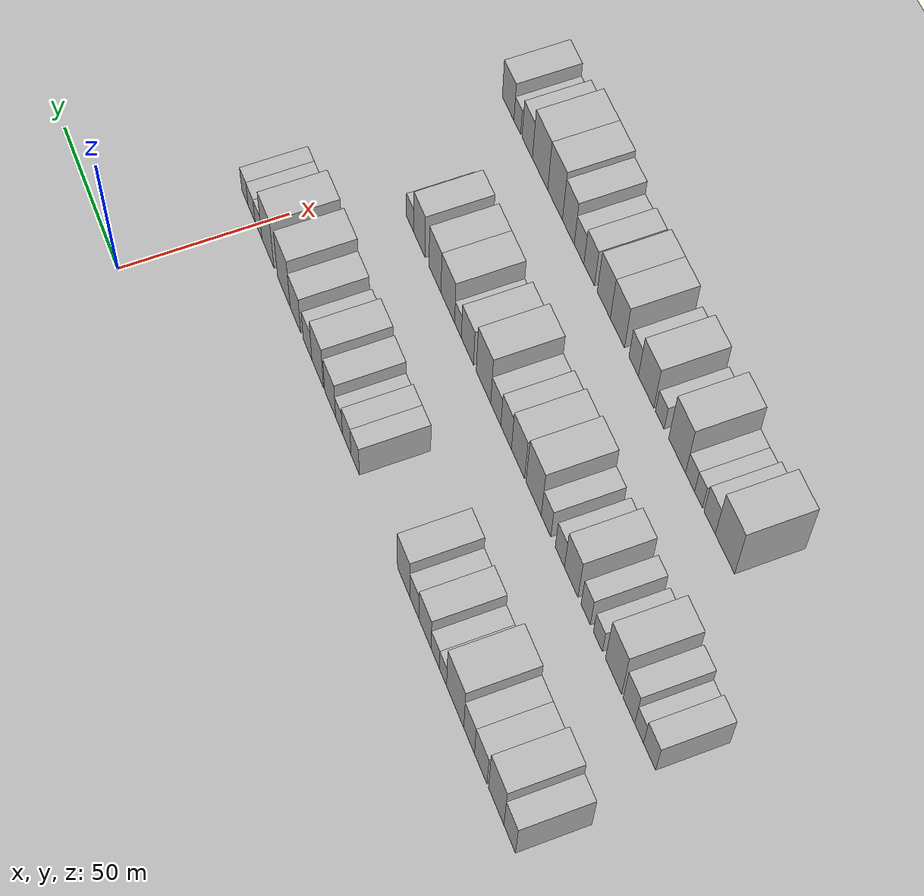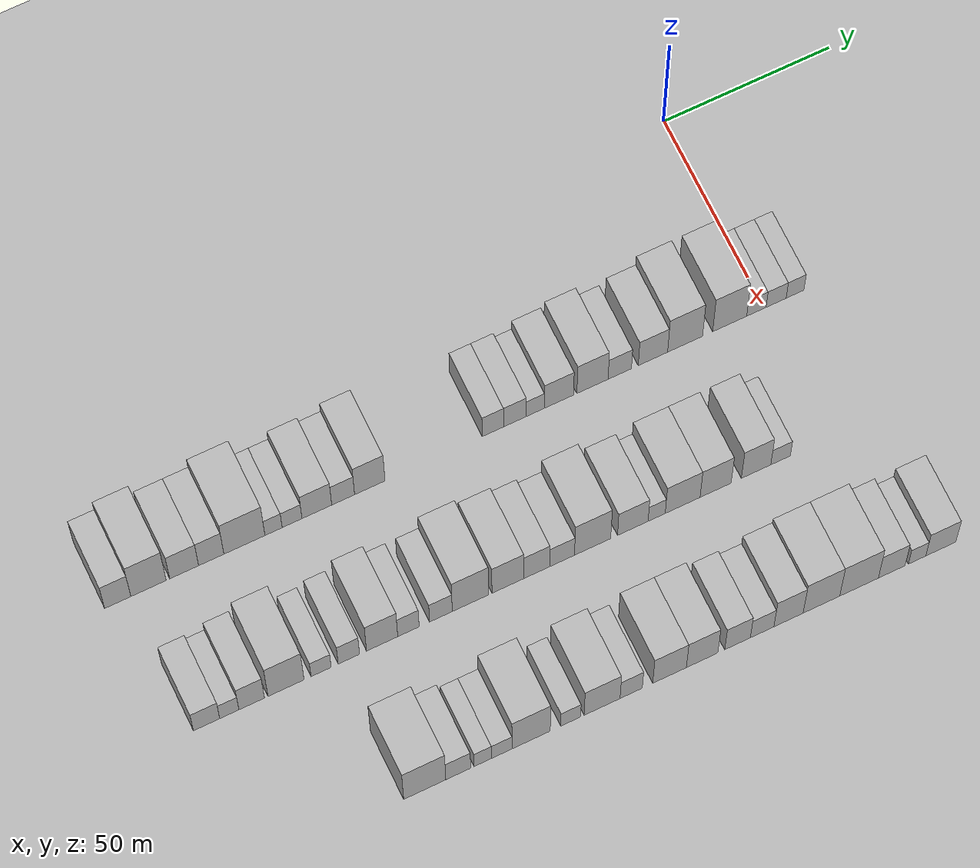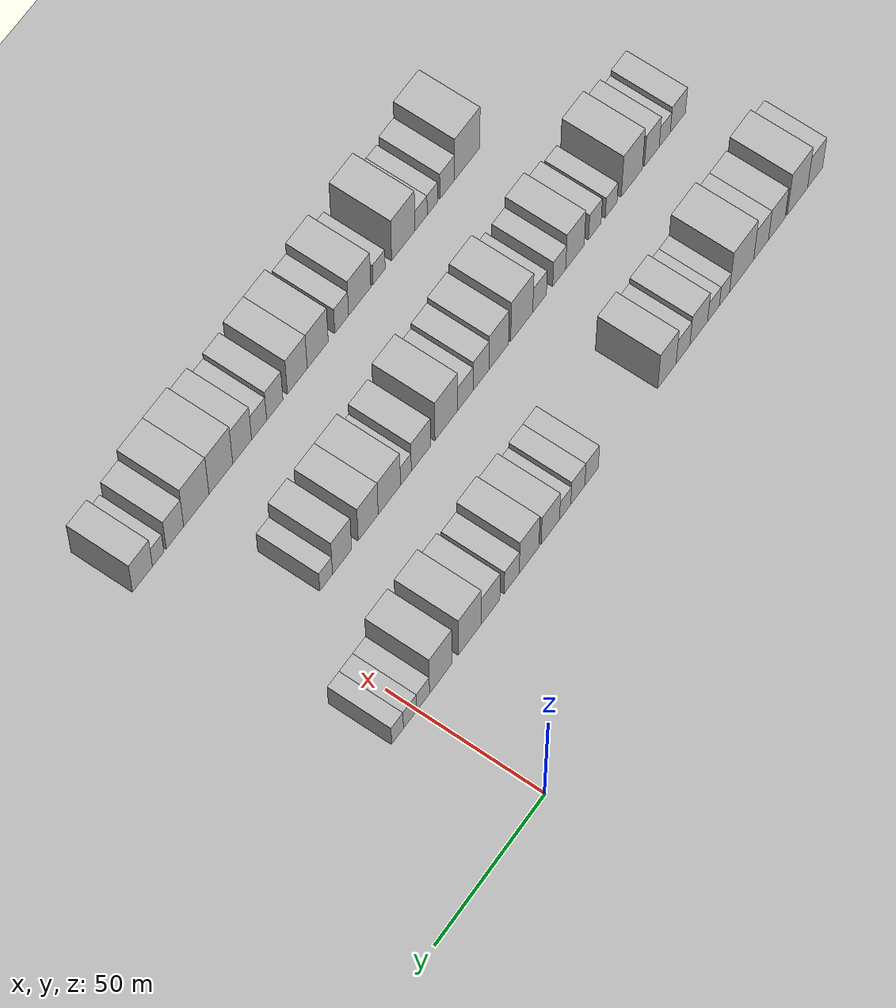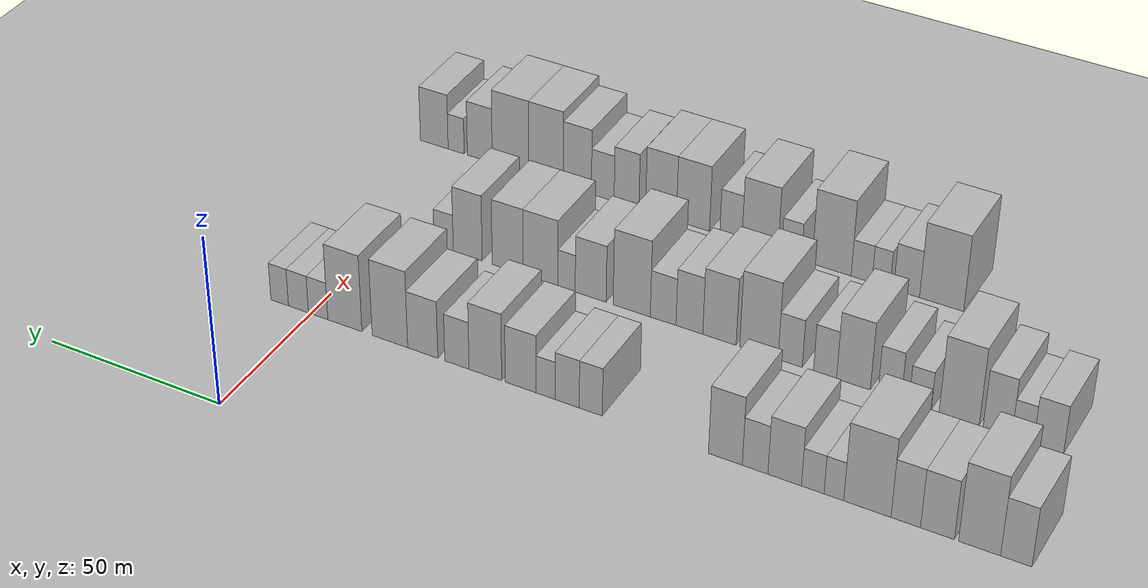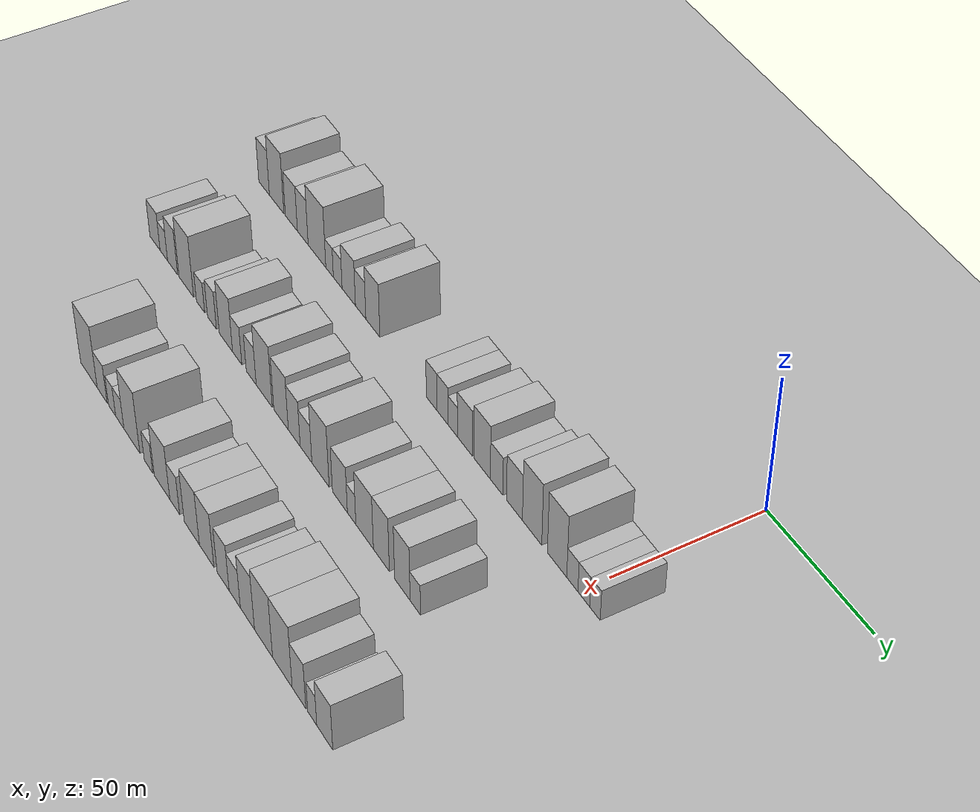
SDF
<sdf version="1.6">
 <world name="default">
  <include><name>ground_plane_1</name><uri>model://HANNAS_ground_plane</uri></include>
  <include>
   <name>ground_plane_2</name>
   <uri>model://HANNAS_ground_plane</uri>
   <pose>100 0 0  0 0 0</pose>
  </include>
  <model name="building_21">
   <static>1</static>
   <pose>50.0000 -188.3198 0 0.000000 0.000000 0.000000</pose>
   <link name="link">
    <pose>0 0 9.00 0 0 0</pose>
    <collision name="collision"><geometry><box><size>20.0000 7.4732 18.0000</size></box></geometry></collision>
    <visual name="visual">
     <cast_shadows>0</cast_shadows>
     <geometry><box><size>20.0000 7.4732 18.0000</size></box></geometry>
     <material>
      <script>
       <uri>model://HANNAS_wall/materials/scripts</uri>
       <uri>model://HANNAS_wall/materials/textures</uri>
       <name>vrc/HANNAS_wall</name>
      </script>
     </material>
    </visual>
   </link>
  </model>
  <model name="building_22">
   <static>1</static>
   <pose>50.0000 -179.5329 0 0.000000 0.000000 0.000000</pose>
   <link name="link">
    <pose>0 0 12.00 0 0 0</pose>
    <collision name="collision"><geometry><box><size>20.0000 10.1005 24.0000</size></box></geometry></collision>
    <visual name="visual">
     <cast_shadows>0</cast_shadows>
     <geometry><box><size>20.0000 10.1005 24.0000</size></box></geometry>
     <material>
      <script>
       <uri>model://HANNAS_wall/materials/scripts</uri>
       <uri>model://HANNAS_wall/materials/textures</uri>
       <name>vrc/HANNAS_wall</name>
      </script>
     </material>
    </visual>
   </link>
  </model>
  <model name="building_23">
   <static>1</static>
   <pose>50.0000 -169.3500 0 0.000000 0.000000 0.000000</pose>
   <link name="link">
    <pose>0 0 9.00 0 0 0</pose>
    <collision name="collision"><geometry><box><size>20.0000 8.2652 18.0000</size></box></geometry></collision>
    <visual name="visual">
     <cast_shadows>0</cast_shadows>
     <geometry><box><size>20.0000 8.2652 18.0000</size></box></geometry>
     <material>
      <script>
       <uri>model://HANNAS_wall/materials/scripts</uri>
       <uri>model://HANNAS_wall/materials/textures</uri>
       <name>vrc/HANNAS_wall</name>
      </script>
     </material>
    </visual>
   </link>
  </model>
  <model name="building_24">
   <static>1</static>
   <pose>50.0000 -161.5943 0 0.000000 0.000000 0.000000</pose>
   <link name="link">
    <pose>0 0 9.00 0 0 0</pose>
    <collision name="collision"><geometry><box><size>20.0000 7.2461 18.0000</size></box></geometry></collision>
    <visual name="visual">
     <cast_shadows>0</cast_shadows>
     <geometry><box><size>20.0000 7.2461 18.0000</size></box></geometry>
     <material>
      <script>
       <uri>model://HANNAS_wall/materials/scripts</uri>
       <uri>model://HANNAS_wall/materials/textures</uri>
       <name>vrc/HANNAS_wall</name>
      </script>
     </material>
    </visual>
   </link>
  </model>
  <model name="building_25">
   <static>1</static>
   <pose>50.0000 -152.0795 0 0.000000 0.000000 0.000000</pose>
   <link name="link">
    <pose>0 0 12.00 0 0 0</pose>
    <collision name="collision"><geometry><box><size>20.0000 11.7835 24.0000</size></box></geometry></collision>
    <visual name="visual">
     <cast_shadows>0</cast_shadows>
     <geometry><box><size>20.0000 11.7835 24.0000</size></box></geometry>
     <material>
      <script>
       <uri>model://HANNAS_wall/materials/scripts</uri>
       <uri>model://HANNAS_wall/materials/textures</uri>
       <name>vrc/HANNAS_wall</name>
      </script>
     </material>
    </visual>
   </link>
  </model>
  <model name="building_26">
   <static>1</static>
   <pose>50.0000 -143.7055 0 0.000000 0.000000 0.000000</pose>
   <link name="link">
    <pose>0 0 6.00 0 0 0</pose>
    <collision name="collision"><geometry><box><size>20.0000 4.9646 12.0000</size></box></geometry></collision>
    <visual name="visual">
     <cast_shadows>0</cast_shadows>
     <geometry><box><size>20.0000 4.9646 12.0000</size></box></geometry>
     <material>
      <script>
       <uri>model://HANNAS_wall/materials/scripts</uri>
       <uri>model://HANNAS_wall/materials/textures</uri>
       <name>vrc/HANNAS_wall</name>
      </script>
     </material>
    </visual>
   </link>
  </model>
  <model name="building_27">
   <static>1</static>
   <pose>50.0000 -138.3703 0 0.000000 0.000000 0.000000</pose>
   <link name="link">
    <pose>0 0 6.00 0 0 0</pose>
    <collision name="collision"><geometry><box><size>20.0000 5.7059 12.0000</size></box></geometry></collision>
    <visual name="visual">
     <cast_shadows>0</cast_shadows>
     <geometry><box><size>20.0000 5.7059 12.0000</size></box></geometry>
     <material>
      <script>
       <uri>model://HANNAS_wall/materials/scripts</uri>
       <uri>model://HANNAS_wall/materials/textures</uri>
       <name>vrc/HANNAS_wall</name>
      </script>
     </material>
    </visual>
   </link>
  </model>
  <model name="building_28">
   <static>1</static>
   <pose>50.0000 -131.2267 0 0.000000 0.000000 0.000000</pose>
   <link name="link">
    <pose>0 0 9.00 0 0 0</pose>
    <collision name="collision"><geometry><box><size>20.0000 8.5813 18.0000</size></box></geometry></collision>
    <visual name="visual">
     <cast_shadows>0</cast_shadows>
     <geometry><box><size>20.0000 8.5813 18.0000</size></box></geometry>
     <material>
      <script>
       <uri>model://HANNAS_wall/materials/scripts</uri>
       <uri>model://HANNAS_wall/materials/textures</uri>
       <name>vrc/HANNAS_wall</name>
      </script>
     </material>
    </visual>
   </link>
  </model>
  <model name="building_29">
   <static>1</static>
   <pose>50.0000 -123.6292 0 0.000000 0.000000 0.000000</pose>
   <link name="link">
    <pose>0 0 7.50 0 0 0</pose>
    <collision name="collision"><geometry><box><size>20.0000 6.6135 15.0000</size></box></geometry></collision>
    <visual name="visual">
     <cast_shadows>0</cast_shadows>
     <geometry><box><size>20.0000 6.6135 15.0000</size></box></geometry>
     <material>
      <script>
       <uri>model://HANNAS_wall/materials/scripts</uri>
       <uri>model://HANNAS_wall/materials/textures</uri>
       <name>vrc/HANNAS_wall</name>
      </script>
     </material>
    </visual>
   </link>
  </model>
  <model name="building_30">
   <static>1</static>
   <pose>50.0000 -115.9181 0 0.000000 0.000000 0.000000</pose>
   <link name="link">
    <pose>0 0 10.50 0 0 0</pose>
    <collision name="collision"><geometry><box><size>20.0000 8.8087 21.0000</size></box></geometry></collision>
    <visual name="visual">
     <cast_shadows>0</cast_shadows>
     <geometry><box><size>20.0000 8.8087 21.0000</size></box></geometry>
     <material>
      <script>
       <uri>model://HANNAS_wall/materials/scripts</uri>
       <uri>model://HANNAS_wall/materials/textures</uri>
       <name>vrc/HANNAS_wall</name>
      </script>
     </material>
    </visual>
   </link>
  </model>
  <model name="building_31">
   <static>1</static>
   <pose>50.0000 -80.0905 0 0.000000 0.000000 0.000000</pose>
   <link name="link">
    <pose>0 0 7.50 0 0 0</pose>
    <collision name="collision"><geometry><box><size>20.0000 6.2821 15.0000</size></box></geometry></collision>
    <visual name="visual">
     <cast_shadows>0</cast_shadows>
     <geometry><box><size>20.0000 6.2821 15.0000</size></box></geometry>
     <material>
      <script>
       <uri>model://HANNAS_wall/materials/scripts</uri>
       <uri>model://HANNAS_wall/materials/textures</uri>
       <name>vrc/HANNAS_wall</name>
      </script>
     </material>
    </visual>
   </link>
  </model>
  <model name="building_32">
   <static>1</static>
   <pose>50.0000 -73.6490 0 0.000000 0.000000 0.000000</pose>
   <link name="link">
    <pose>0 0 7.50 0 0 0</pose>
    <collision name="collision"><geometry><box><size>20.0000 6.6010 15.0000</size></box></geometry></collision>
    <visual name="visual">
     <cast_shadows>0</cast_shadows>
     <geometry><box><size>20.0000 6.6010 15.0000</size></box></geometry>
     <material>
      <script>
       <uri>model://HANNAS_wall/materials/scripts</uri>
       <uri>model://HANNAS_wall/materials/textures</uri>
       <name>vrc/HANNAS_wall</name>
      </script>
     </material>
    </visual>
   </link>
  </model>
  <model name="building_33">
   <static>1</static>
   <pose>50.0000 -67.7067 0 0.000000 0.000000 0.000000</pose>
   <link name="link">
    <pose>0 0 6.00 0 0 0</pose>
    <collision name="collision"><geometry><box><size>20.0000 5.2834 12.0000</size></box></geometry></collision>
    <visual name="visual">
     <cast_shadows>0</cast_shadows>
     <geometry><box><size>20.0000 5.2834 12.0000</size></box></geometry>
     <material>
      <script>
       <uri>model://HANNAS_wall/materials/scripts</uri>
       <uri>model://HANNAS_wall/materials/textures</uri>
       <name>vrc/HANNAS_wall</name>
      </script>
     </material>
    </visual>
   </link>
  </model>
  <model name="building_34">
   <static>1</static>
   <pose>50.0000 -60.7892 0 0.000000 0.000000 0.000000</pose>
   <link name="link">
    <pose>0 0 9.00 0 0 0</pose>
    <collision name="collision"><geometry><box><size>20.0000 8.5517 18.0000</size></box></geometry></collision>
    <visual name="visual">
     <cast_shadows>0</cast_shadows>
     <geometry><box><size>20.0000 8.5517 18.0000</size></box></geometry>
     <material>
      <script>
       <uri>model://HANNAS_wall/materials/scripts</uri>
       <uri>model://HANNAS_wall/materials/textures</uri>
       <name>vrc/HANNAS_wall</name>
      </script>
     </material>
    </visual>
   </link>
  </model>
  <model name="building_35">
   <static>1</static>
   <pose>50.0000 -50.9330 0 0.000000 0.000000 0.000000</pose>
   <link name="link">
    <pose>0 0 10.50 0 0 0</pose>
    <collision name="collision"><geometry><box><size>20.0000 9.1607 21.0000</size></box></geometry></collision>
    <visual name="visual">
     <cast_shadows>0</cast_shadows>
     <geometry><box><size>20.0000 9.1607 21.0000</size></box></geometry>
     <material>
      <script>
       <uri>model://HANNAS_wall/materials/scripts</uri>
       <uri>model://HANNAS_wall/materials/textures</uri>
       <name>vrc/HANNAS_wall</name>
      </script>
     </material>
    </visual>
   </link>
  </model>
  <model name="building_36">
   <static>1</static>
   <pose>50.0000 -42.9016 0 0.000000 0.000000 0.000000</pose>
   <link name="link">
    <pose>0 0 7.50 0 0 0</pose>
    <collision name="collision"><geometry><box><size>20.0000 6.9022 15.0000</size></box></geometry></collision>
    <visual name="visual">
     <cast_shadows>0</cast_shadows>
     <geometry><box><size>20.0000 6.9022 15.0000</size></box></geometry>
     <material>
      <script>
       <uri>model://HANNAS_wall/materials/scripts</uri>
       <uri>model://HANNAS_wall/materials/textures</uri>
       <name>vrc/HANNAS_wall</name>
      </script>
     </material>
    </visual>
   </link>
  </model>
  <model name="building_37">
   <static>1</static>
   <pose>50.0000 -33.1178 0 0.000000 0.000000 0.000000</pose>
   <link name="link">
    <pose>0 0 9.00 0 0 0</pose>
    <collision name="collision"><geometry><box><size>20.0000 8.6654 18.0000</size></box></geometry></collision>
    <visual name="visual">
     <cast_shadows>0</cast_shadows>
     <geometry><box><size>20.0000 8.6654 18.0000</size></box></geometry>
     <material>
      <script>
       <uri>model://HANNAS_wall/materials/scripts</uri>
       <uri>model://HANNAS_wall/materials/textures</uri>
       <name>vrc/HANNAS_wall</name>
      </script>
     </material>
    </visual>
   </link>
  </model>
  <model name="building_38">
   <static>1</static>
   <pose>50.0000 -23.6172 0 0.000000 0.000000 0.000000</pose>
   <link name="link">
    <pose>0 0 12.00 0 0 0</pose>
    <collision name="collision"><geometry><box><size>20.0000 10.3358 24.0000</size></box></geometry></collision>
    <visual name="visual">
     <cast_shadows>0</cast_shadows>
     <geometry><box><size>20.0000 10.3358 24.0000</size></box></geometry>
     <material>
      <script>
       <uri>model://HANNAS_wall/materials/scripts</uri>
       <uri>model://HANNAS_wall/materials/textures</uri>
       <name>vrc/HANNAS_wall</name>
      </script>
     </material>
    </visual>
   </link>
  </model>
  <model name="building_39">
   <static>1</static>
   <pose>50.0000 -10.4060 0 0.000000 0.000000 0.000000</pose>
   <link name="link">
    <pose>0 0 12.00 0 0 0</pose>
    <collision name="collision"><geometry><box><size>20.0000 10.0866 24.0000</size></box></geometry></collision>
    <visual name="visual">
     <cast_shadows>0</cast_shadows>
     <geometry><box><size>20.0000 10.0866 24.0000</size></box></geometry>
     <material>
      <script>
       <uri>model://HANNAS_wall/materials/scripts</uri>
       <uri>model://HANNAS_wall/materials/textures</uri>
       <name>vrc/HANNAS_wall</name>
      </script>
     </material>
    </visual>
   </link>
  </model>
  <model name="building_40">
   <static>1</static>
   <pose>50.0000 -2.4798 0 0.000000 0.000000 0.000000</pose>
   <link name="link">
    <pose>0 0 6.00 0 0 0</pose>
    <collision name="collision"><geometry><box><size>20.0000 5.7658 12.0000</size></box></geometry></collision>
    <visual name="visual">
     <cast_shadows>0</cast_shadows>
     <geometry><box><size>20.0000 5.7658 12.0000</size></box></geometry>
     <material>
      <script>
       <uri>model://HANNAS_wall/materials/scripts</uri>
       <uri>model://HANNAS_wall/materials/textures</uri>
       <name>vrc/HANNAS_wall</name>
      </script>
     </material>
    </visual>
   </link>
  </model>
  <model name="building_41">
   <static>1</static>
   <pose>50.0000 3.4002 0 0.000000 0.000000 0.000000</pose>
   <link name="link">
    <pose>0 0 6.00 0 0 0</pose>
    <collision name="collision"><geometry><box><size>20.0000 5.9941 12.0000</size></box></geometry></collision>
    <visual name="visual">
     <cast_shadows>0</cast_shadows>
     <geometry><box><size>20.0000 5.9941 12.0000</size></box></geometry>
     <material>
      <script>
       <uri>model://HANNAS_wall/materials/scripts</uri>
       <uri>model://HANNAS_wall/materials/textures</uri>
       <name>vrc/HANNAS_wall</name>
      </script>
     </material>
    </visual>
   </link>
  </model>
  <model name="building_42">
   <static>1</static>
   <pose>50.0000 9.0390 0 0.000000 0.000000 0.000000</pose>
   <link name="link">
    <pose>0 0 6.00 0 0 0</pose>
    <collision name="collision"><geometry><box><size>20.0000 5.2836 12.0000</size></box></geometry></collision>
    <visual name="visual">
     <cast_shadows>0</cast_shadows>
     <geometry><box><size>20.0000 5.2836 12.0000</size></box></geometry>
     <material>
      <script>
       <uri>model://HANNAS_wall/materials/scripts</uri>
       <uri>model://HANNAS_wall/materials/textures</uri>
       <name>vrc/HANNAS_wall</name>
      </script>
     </material>
    </visual>
   </link>
  </model>
  <model name="building_103">
   <static>1</static>
   <pose>90.0000 -181.1749 0 0.000000 0.000000 0.000000</pose>
   <link name="link">
    <pose>0 0 7.50 0 0 0</pose>
    <collision name="collision"><geometry><box><size>20.0000 7.4631 15.0000</size></box></geometry></collision>
    <visual name="visual">
     <cast_shadows>0</cast_shadows>
     <geometry><box><size>20.0000 7.4631 15.0000</size></box></geometry>
     <material>
      <script>
       <uri>model://HANNAS_wall/materials/scripts</uri>
       <uri>model://HANNAS_wall/materials/textures</uri>
       <name>vrc/HANNAS_wall</name>
      </script>
     </material>
    </visual>
   </link>
  </model>
  <model name="building_104">
   <static>1</static>
   <pose>90.0000 -174.7234 0 0.000000 0.000000 0.000000</pose>
   <link name="link">
    <pose>0 0 6.00 0 0 0</pose>
    <collision name="collision"><geometry><box><size>20.0000 5.4399 12.0000</size></box></geometry></collision>
    <visual name="visual">
     <cast_shadows>0</cast_shadows>
     <geometry><box><size>20.0000 5.4399 12.0000</size></box></geometry>
     <material>
      <script>
       <uri>model://HANNAS_wall/materials/scripts</uri>
       <uri>model://HANNAS_wall/materials/textures</uri>
       <name>vrc/HANNAS_wall</name>
      </script>
     </material>
    </visual>
   </link>
  </model>
  <model name="building_105">
   <static>1</static>
   <pose>90.0000 -168.3769 0 0.000000 0.000000 0.000000</pose>
   <link name="link">
    <pose>0 0 9.00 0 0 0</pose>
    <collision name="collision"><geometry><box><size>20.0000 7.2531 18.0000</size></box></geometry></collision>
    <visual name="visual">
     <cast_shadows>0</cast_shadows>
     <geometry><box><size>20.0000 7.2531 18.0000</size></box></geometry>
     <material>
      <script>
       <uri>model://HANNAS_wall/materials/scripts</uri>
       <uri>model://HANNAS_wall/materials/textures</uri>
       <name>vrc/HANNAS_wall</name>
      </script>
     </material>
    </visual>
   </link>
  </model>
  <model name="building_106">
   <static>1</static>
   <pose>90.0000 -158.6142 0 0.000000 0.000000 0.000000</pose>
   <link name="link">
    <pose>0 0 12.00 0 0 0</pose>
    <collision name="collision"><geometry><box><size>20.0000 10.2724 24.0000</size></box></geometry></collision>
    <visual name="visual">
     <cast_shadows>0</cast_shadows>
     <geometry><box><size>20.0000 10.2724 24.0000</size></box></geometry>
     <material>
      <script>
       <uri>model://HANNAS_wall/materials/scripts</uri>
       <uri>model://HANNAS_wall/materials/textures</uri>
       <name>vrc/HANNAS_wall</name>
      </script>
     </material>
    </visual>
   </link>
  </model>
  <model name="building_107">
   <static>1</static>
   <pose>90.0000 -148.6114 0 0.000000 0.000000 0.000000</pose>
   <link name="link">
    <pose>0 0 6.00 0 0 0</pose>
    <collision name="collision"><geometry><box><size>20.0000 5.7331 12.0000</size></box></geometry></collision>
    <visual name="visual">
     <cast_shadows>0</cast_shadows>
     <geometry><box><size>20.0000 5.7331 12.0000</size></box></geometry>
     <material>
      <script>
       <uri>model://HANNAS_wall/materials/scripts</uri>
       <uri>model://HANNAS_wall/materials/textures</uri>
       <name>vrc/HANNAS_wall</name>
      </script>
     </material>
    </visual>
   </link>
  </model>
  <model name="building_108">
   <static>1</static>
   <pose>90.0000 -140.6929 0 0.000000 0.000000 0.000000</pose>
   <link name="link">
    <pose>0 0 7.50 0 0 0</pose>
    <collision name="collision"><geometry><box><size>20.0000 6.1039 15.0000</size></box></geometry></collision>
    <visual name="visual">
     <cast_shadows>0</cast_shadows>
     <geometry><box><size>20.0000 6.1039 15.0000</size></box></geometry>
     <material>
      <script>
       <uri>model://HANNAS_wall/materials/scripts</uri>
       <uri>model://HANNAS_wall/materials/textures</uri>
       <name>vrc/HANNAS_wall</name>
      </script>
     </material>
    </visual>
   </link>
  </model>
  <model name="building_109">
   <static>1</static>
   <pose>90.0000 -131.1751 0 0.000000 0.000000 0.000000</pose>
   <link name="link">
    <pose>0 0 10.50 0 0 0</pose>
    <collision name="collision"><geometry><box><size>20.0000 8.9317 21.0000</size></box></geometry></collision>
    <visual name="visual">
     <cast_shadows>0</cast_shadows>
     <geometry><box><size>20.0000 8.9317 21.0000</size></box></geometry>
     <material>
      <script>
       <uri>model://HANNAS_wall/materials/scripts</uri>
       <uri>model://HANNAS_wall/materials/textures</uri>
       <name>vrc/HANNAS_wall</name>
      </script>
     </material>
    </visual>
   </link>
  </model>
  <model name="building_110">
   <static>1</static>
   <pose>90.0000 -123.6322 0 0.000000 0.000000 0.000000</pose>
   <link name="link">
    <pose>0 0 7.50 0 0 0</pose>
    <collision name="collision"><geometry><box><size>20.0000 6.1542 15.0000</size></box></geometry></collision>
    <visual name="visual">
     <cast_shadows>0</cast_shadows>
     <geometry><box><size>20.0000 6.1542 15.0000</size></box></geometry>
     <material>
      <script>
       <uri>model://HANNAS_wall/materials/scripts</uri>
       <uri>model://HANNAS_wall/materials/textures</uri>
       <name>vrc/HANNAS_wall</name>
      </script>
     </material>
    </visual>
   </link>
  </model>
  <model name="building_111">
   <static>1</static>
   <pose>90.0000 -114.2964 0 0.000000 0.000000 0.000000</pose>
   <link name="link">
    <pose>0 0 7.50 0 0 0</pose>
    <collision name="collision"><geometry><box><size>20.0000 6.5174 15.0000</size></box></geometry></collision>
    <visual name="visual">
     <cast_shadows>0</cast_shadows>
     <geometry><box><size>20.0000 6.5174 15.0000</size></box></geometry>
     <material>
      <script>
       <uri>model://HANNAS_wall/materials/scripts</uri>
       <uri>model://HANNAS_wall/materials/textures</uri>
       <name>vrc/HANNAS_wall</name>
      </script>
     </material>
    </visual>
   </link>
  </model>
  <model name="building_112">
   <static>1</static>
   <pose>90.0000 -105.8138 0 0.000000 0.000000 0.000000</pose>
   <link name="link">
    <pose>0 0 12.00 0 0 0</pose>
    <collision name="collision"><geometry><box><size>20.0000 10.4478 24.0000</size></box></geometry></collision>
    <visual name="visual">
     <cast_shadows>0</cast_shadows>
     <geometry><box><size>20.0000 10.4478 24.0000</size></box></geometry>
     <material>
      <script>
       <uri>model://HANNAS_wall/materials/scripts</uri>
       <uri>model://HANNAS_wall/materials/textures</uri>
       <name>vrc/HANNAS_wall</name>
      </script>
     </material>
    </visual>
   </link>
  </model>
  <model name="building_113">
   <static>1</static>
   <pose>90.0000 -94.9970 0 0.000000 0.000000 0.000000</pose>
   <link name="link">
    <pose>0 0 10.50 0 0 0</pose>
    <collision name="collision"><geometry><box><size>20.0000 9.1859 21.0000</size></box></geometry></collision>
    <visual name="visual">
     <cast_shadows>0</cast_shadows>
     <geometry><box><size>20.0000 9.1859 21.0000</size></box></geometry>
     <material>
      <script>
       <uri>model://HANNAS_wall/materials/scripts</uri>
       <uri>model://HANNAS_wall/materials/textures</uri>
       <name>vrc/HANNAS_wall</name>
      </script>
     </material>
    </visual>
   </link>
  </model>
  <model name="building_114">
   <static>1</static>
   <pose>90.0000 -86.6716 0 0.000000 0.000000 0.000000</pose>
   <link name="link">
    <pose>0 0 9.00 0 0 0</pose>
    <collision name="collision"><geometry><box><size>20.0000 7.4649 18.0000</size></box></geometry></collision>
    <visual name="visual">
     <cast_shadows>0</cast_shadows>
     <geometry><box><size>20.0000 7.4649 18.0000</size></box></geometry>
     <material>
      <script>
       <uri>model://HANNAS_wall/materials/scripts</uri>
       <uri>model://HANNAS_wall/materials/textures</uri>
       <name>vrc/HANNAS_wall</name>
      </script>
     </material>
    </visual>
   </link>
  </model>
  <model name="building_115">
   <static>1</static>
   <pose>90.0000 -79.3301 0 0.000000 0.000000 0.000000</pose>
   <link name="link">
    <pose>0 0 7.50 0 0 0</pose>
    <collision name="collision"><geometry><box><size>20.0000 7.2182 15.0000</size></box></geometry></collision>
    <visual name="visual">
     <cast_shadows>0</cast_shadows>
     <geometry><box><size>20.0000 7.2182 15.0000</size></box></geometry>
     <material>
      <script>
       <uri>model://HANNAS_wall/materials/scripts</uri>
       <uri>model://HANNAS_wall/materials/textures</uri>
       <name>vrc/HANNAS_wall</name>
      </script>
     </material>
    </visual>
   </link>
  </model>
  <model name="building_116">
   <static>1</static>
   <pose>90.0000 -70.4651 0 0.000000 0.000000 0.000000</pose>
   <link name="link">
    <pose>0 0 12.00 0 0 0</pose>
    <collision name="collision"><geometry><box><size>20.0000 10.5117 24.0000</size></box></geometry></collision>
    <visual name="visual">
     <cast_shadows>0</cast_shadows>
     <geometry><box><size>20.0000 10.5117 24.0000</size></box></geometry>
     <material>
      <script>
       <uri>model://HANNAS_wall/materials/scripts</uri>
       <uri>model://HANNAS_wall/materials/textures</uri>
       <name>vrc/HANNAS_wall</name>
      </script>
     </material>
    </visual>
   </link>
  </model>
  <model name="building_117">
   <static>1</static>
   <pose>90.0000 -58.7573 0 0.000000 0.000000 0.000000</pose>
   <link name="link">
    <pose>0 0 9.00 0 0 0</pose>
    <collision name="collision"><geometry><box><size>20.0000 8.9038 18.0000</size></box></geometry></collision>
    <visual name="visual">
     <cast_shadows>0</cast_shadows>
     <geometry><box><size>20.0000 8.9038 18.0000</size></box></geometry>
     <material>
      <script>
       <uri>model://HANNAS_wall/materials/scripts</uri>
       <uri>model://HANNAS_wall/materials/textures</uri>
       <name>vrc/HANNAS_wall</name>
      </script>
     </material>
    </visual>
   </link>
  </model>
  <model name="building_118">
   <static>1</static>
   <pose>90.0000 -51.8091 0 0.000000 0.000000 0.000000</pose>
   <link name="link">
    <pose>0 0 6.00 0 0 0</pose>
    <collision name="collision"><geometry><box><size>20.0000 4.9926 12.0000</size></box></geometry></collision>
    <visual name="visual">
     <cast_shadows>0</cast_shadows>
     <geometry><box><size>20.0000 4.9926 12.0000</size></box></geometry>
     <material>
      <script>
       <uri>model://HANNAS_wall/materials/scripts</uri>
       <uri>model://HANNAS_wall/materials/textures</uri>
       <name>vrc/HANNAS_wall</name>
      </script>
     </material>
    </visual>
   </link>
  </model>
  <model name="building_119">
   <static>1</static>
   <pose>90.0000 -44.2139 0 0.000000 0.000000 0.000000</pose>
   <link name="link">
    <pose>0 0 10.50 0 0 0</pose>
    <collision name="collision"><geometry><box><size>20.0000 10.1979 21.0000</size></box></geometry></collision>
    <visual name="visual">
     <cast_shadows>0</cast_shadows>
     <geometry><box><size>20.0000 10.1979 21.0000</size></box></geometry>
     <material>
      <script>
       <uri>model://HANNAS_wall/materials/scripts</uri>
       <uri>model://HANNAS_wall/materials/textures</uri>
       <name>vrc/HANNAS_wall</name>
      </script>
     </material>
    </visual>
   </link>
  </model>
  <model name="building_120">
   <static>1</static>
   <pose>90.0000 -34.5667 0 0.000000 0.000000 0.000000</pose>
   <link name="link">
    <pose>0 0 10.50 0 0 0</pose>
    <collision name="collision"><geometry><box><size>20.0000 9.0967 21.0000</size></box></geometry></collision>
    <visual name="visual">
     <cast_shadows>0</cast_shadows>
     <geometry><box><size>20.0000 9.0967 21.0000</size></box></geometry>
     <material>
      <script>
       <uri>model://HANNAS_wall/materials/scripts</uri>
       <uri>model://HANNAS_wall/materials/textures</uri>
       <name>vrc/HANNAS_wall</name>
      </script>
     </material>
    </visual>
   </link>
  </model>
  <model name="building_121">
   <static>1</static>
   <pose>90.0000 -22.6970 0 0.000000 0.000000 0.000000</pose>
   <link name="link">
    <pose>0 0 10.50 0 0 0</pose>
    <collision name="collision"><geometry><box><size>20.0000 8.6427 21.0000</size></box></geometry></collision>
    <visual name="visual">
     <cast_shadows>0</cast_shadows>
     <geometry><box><size>20.0000 8.6427 21.0000</size></box></geometry>
     <material>
      <script>
       <uri>model://HANNAS_wall/materials/scripts</uri>
       <uri>model://HANNAS_wall/materials/textures</uri>
       <name>vrc/HANNAS_wall</name>
      </script>
     </material>
    </visual>
   </link>
  </model>
  <model name="building_122">
   <static>1</static>
   <pose>90.0000 -15.5007 0 0.000000 0.000000 0.000000</pose>
   <link name="link">
    <pose>0 0 6.00 0 0 0</pose>
    <collision name="collision"><geometry><box><size>20.0000 5.7499 12.0000</size></box></geometry></collision>
    <visual name="visual">
     <cast_shadows>0</cast_shadows>
     <geometry><box><size>20.0000 5.7499 12.0000</size></box></geometry>
     <material>
      <script>
       <uri>model://HANNAS_wall/materials/scripts</uri>
       <uri>model://HANNAS_wall/materials/textures</uri>
       <name>vrc/HANNAS_wall</name>
      </script>
     </material>
    </visual>
   </link>
  </model>
  <model name="building_181">
   <static>1</static>
   <pose>130.0000 -137.9357 0 0.000000 0.000000 0.000000</pose>
   <link name="link">
    <pose>0 0 12.00 0 0 0</pose>
    <collision name="collision"><geometry><box><size>20.0000 11.9549 24.0000</size></box></geometry></collision>
    <visual name="visual">
     <cast_shadows>0</cast_shadows>
     <geometry><box><size>20.0000 11.9549 24.0000</size></box></geometry>
     <material>
      <script>
       <uri>model://HANNAS_wall/materials/scripts</uri>
       <uri>model://HANNAS_wall/materials/textures</uri>
       <name>vrc/HANNAS_wall</name>
      </script>
     </material>
    </visual>
   </link>
  </model>
  <model name="building_182">
   <static>1</static>
   <pose>130.0000 -128.4210 0 0.000000 0.000000 0.000000</pose>
   <link name="link">
    <pose>0 0 7.50 0 0 0</pose>
    <collision name="collision"><geometry><box><size>20.0000 7.0745 15.0000</size></box></geometry></collision>
    <visual name="visual">
     <cast_shadows>0</cast_shadows>
     <geometry><box><size>20.0000 7.0745 15.0000</size></box></geometry>
     <material>
      <script>
       <uri>model://HANNAS_wall/materials/scripts</uri>
       <uri>model://HANNAS_wall/materials/textures</uri>
       <name>vrc/HANNAS_wall</name>
      </script>
     </material>
    </visual>
   </link>
  </model>
  <model name="building_183">
   <static>1</static>
   <pose>130.0000 -121.3919 0 0.000000 0.000000 0.000000</pose>
   <link name="link">
    <pose>0 0 6.00 0 0 0</pose>
    <collision name="collision"><geometry><box><size>20.0000 4.9837 12.0000</size></box></geometry></collision>
    <visual name="visual">
     <cast_shadows>0</cast_shadows>
     <geometry><box><size>20.0000 4.9837 12.0000</size></box></geometry>
     <material>
      <script>
       <uri>model://HANNAS_wall/materials/scripts</uri>
       <uri>model://HANNAS_wall/materials/textures</uri>
       <name>vrc/HANNAS_wall</name>
      </script>
     </material>
    </visual>
   </link>
  </model>
  <model name="building_184">
   <static>1</static>
   <pose>130.0000 -116.0109 0 0.000000 0.000000 0.000000</pose>
   <link name="link">
    <pose>0 0 6.00 0 0 0</pose>
    <collision name="collision"><geometry><box><size>20.0000 5.7783 12.0000</size></box></geometry></collision>
    <visual name="visual">
     <cast_shadows>0</cast_shadows>
     <geometry><box><size>20.0000 5.7783 12.0000</size></box></geometry>
     <material>
      <script>
       <uri>model://HANNAS_wall/materials/scripts</uri>
       <uri>model://HANNAS_wall/materials/textures</uri>
       <name>vrc/HANNAS_wall</name>
      </script>
     </material>
    </visual>
   </link>
  </model>
  <model name="building_185">
   <static>1</static>
   <pose>130.0000 -107.6494 0 0.000000 0.000000 0.000000</pose>
   <link name="link">
    <pose>0 0 12.00 0 0 0</pose>
    <collision name="collision"><geometry><box><size>20.0000 10.9448 24.0000</size></box></geometry></collision>
    <visual name="visual">
     <cast_shadows>0</cast_shadows>
     <geometry><box><size>20.0000 10.9448 24.0000</size></box></geometry>
     <material>
      <script>
       <uri>model://HANNAS_wall/materials/scripts</uri>
       <uri>model://HANNAS_wall/materials/textures</uri>
       <name>vrc/HANNAS_wall</name>
      </script>
     </material>
    </visual>
   </link>
  </model>
  <model name="building_186">
   <static>1</static>
   <pose>130.0000 -96.3186 0 0.000000 0.000000 0.000000</pose>
   <link name="link">
    <pose>0 0 6.00 0 0 0</pose>
    <collision name="collision"><geometry><box><size>20.0000 5.7167 12.0000</size></box></geometry></collision>
    <visual name="visual">
     <cast_shadows>0</cast_shadows>
     <geometry><box><size>20.0000 5.7167 12.0000</size></box></geometry>
     <material>
      <script>
       <uri>model://HANNAS_wall/materials/scripts</uri>
       <uri>model://HANNAS_wall/materials/textures</uri>
       <name>vrc/HANNAS_wall</name>
      </script>
     </material>
    </visual>
   </link>
  </model>
  <model name="building_187">
   <static>1</static>
   <pose>130.0000 -87.2966 0 0.000000 0.000000 0.000000</pose>
   <link name="link">
    <pose>0 0 10.50 0 0 0</pose>
    <collision name="collision"><geometry><box><size>20.0000 10.3274 21.0000</size></box></geometry></collision>
    <visual name="visual">
     <cast_shadows>0</cast_shadows>
     <geometry><box><size>20.0000 10.3274 21.0000</size></box></geometry>
     <material>
      <script>
       <uri>model://HANNAS_wall/materials/scripts</uri>
       <uri>model://HANNAS_wall/materials/textures</uri>
       <name>vrc/HANNAS_wall</name>
      </script>
     </material>
    </visual>
   </link>
  </model>
  <model name="building_188">
   <static>1</static>
   <pose>130.0000 -78.9342 0 0.000000 0.000000 0.000000</pose>
   <link name="link">
    <pose>0 0 7.50 0 0 0</pose>
    <collision name="collision"><geometry><box><size>20.0000 6.3974 15.0000</size></box></geometry></collision>
    <visual name="visual">
     <cast_shadows>0</cast_shadows>
     <geometry><box><size>20.0000 6.3974 15.0000</size></box></geometry>
     <material>
      <script>
       <uri>model://HANNAS_wall/materials/scripts</uri>
       <uri>model://HANNAS_wall/materials/textures</uri>
       <name>vrc/HANNAS_wall</name>
      </script>
     </material>
    </visual>
   </link>
  </model>
  <model name="building_189">
   <static>1</static>
   <pose>130.0000 -67.8846 0 0.000000 0.000000 0.000000</pose>
   <link name="link">
    <pose>0 0 10.50 0 0 0</pose>
    <collision name="collision"><geometry><box><size>20.0000 9.7017 21.0000</size></box></geometry></collision>
    <visual name="visual">
     <cast_shadows>0</cast_shadows>
     <geometry><box><size>20.0000 9.7017 21.0000</size></box></geometry>
     <material>
      <script>
       <uri>model://HANNAS_wall/materials/scripts</uri>
       <uri>model://HANNAS_wall/materials/textures</uri>
       <name>vrc/HANNAS_wall</name>
      </script>
     </material>
    </visual>
   </link>
  </model>
  <model name="building_190">
   <static>1</static>
   <pose>130.0000 -58.4833 0 0.000000 0.000000 0.000000</pose>
   <link name="link">
    <pose>0 0 10.50 0 0 0</pose>
    <collision name="collision"><geometry><box><size>20.0000 9.1009 21.0000</size></box></geometry></collision>
    <visual name="visual">
     <cast_shadows>0</cast_shadows>
     <geometry><box><size>20.0000 9.1009 21.0000</size></box></geometry>
     <material>
      <script>
       <uri>model://HANNAS_wall/materials/scripts</uri>
       <uri>model://HANNAS_wall/materials/textures</uri>
       <name>vrc/HANNAS_wall</name>
      </script>
     </material>
    </visual>
   </link>
  </model>
  <model name="building_191">
   <static>1</static>
   <pose>130.0000 -48.2224 0 0.000000 0.000000 0.000000</pose>
   <link name="link">
    <pose>0 0 9.00 0 0 0</pose>
    <collision name="collision"><geometry><box><size>20.0000 7.4208 18.0000</size></box></geometry></collision>
    <visual name="visual">
     <cast_shadows>0</cast_shadows>
     <geometry><box><size>20.0000 7.4208 18.0000</size></box></geometry>
     <material>
      <script>
       <uri>model://HANNAS_wall/materials/scripts</uri>
       <uri>model://HANNAS_wall/materials/textures</uri>
       <name>vrc/HANNAS_wall</name>
      </script>
     </material>
    </visual>
   </link>
  </model>
  <model name="building_192">
   <static>1</static>
   <pose>130.0000 -41.0879 0 0.000000 0.000000 0.000000</pose>
   <link name="link">
    <pose>0 0 7.50 0 0 0</pose>
    <collision name="collision"><geometry><box><size>20.0000 6.8482 15.0000</size></box></geometry></collision>
    <visual name="visual">
     <cast_shadows>0</cast_shadows>
     <geometry><box><size>20.0000 6.8482 15.0000</size></box></geometry>
     <material>
      <script>
       <uri>model://HANNAS_wall/materials/scripts</uri>
       <uri>model://HANNAS_wall/materials/textures</uri>
       <name>vrc/HANNAS_wall</name>
      </script>
     </material>
    </visual>
   </link>
  </model>
  <model name="building_193">
   <static>1</static>
   <pose>130.0000 -33.4080 0 0.000000 0.000000 0.000000</pose>
   <link name="link">
    <pose>0 0 10.50 0 0 0</pose>
    <collision name="collision"><geometry><box><size>20.0000 8.5117 21.0000</size></box></geometry></collision>
    <visual name="visual">
     <cast_shadows>0</cast_shadows>
     <geometry><box><size>20.0000 8.5117 21.0000</size></box></geometry>
     <material>
      <script>
       <uri>model://HANNAS_wall/materials/scripts</uri>
       <uri>model://HANNAS_wall/materials/textures</uri>
       <name>vrc/HANNAS_wall</name>
      </script>
     </material>
    </visual>
   </link>
  </model>
  <model name="building_194">
   <static>1</static>
   <pose>130.0000 -23.8116 0 0.000000 0.000000 0.000000</pose>
   <link name="link">
    <pose>0 0 12.00 0 0 0</pose>
    <collision name="collision"><geometry><box><size>20.0000 10.6812 24.0000</size></box></geometry></collision>
    <visual name="visual">
     <cast_shadows>0</cast_shadows>
     <geometry><box><size>20.0000 10.6812 24.0000</size></box></geometry>
     <material>
      <script>
       <uri>model://HANNAS_wall/materials/scripts</uri>
       <uri>model://HANNAS_wall/materials/textures</uri>
       <name>vrc/HANNAS_wall</name>
      </script>
     </material>
    </visual>
   </link>
  </model>
  <model name="building_195">
   <static>1</static>
   <pose>130.0000 -12.8145 0 0.000000 0.000000 0.000000</pose>
   <link name="link">
    <pose>0 0 12.00 0 0 0</pose>
    <collision name="collision"><geometry><box><size>20.0000 11.3129 24.0000</size></box></geometry></collision>
    <visual name="visual">
     <cast_shadows>0</cast_shadows>
     <geometry><box><size>20.0000 11.3129 24.0000</size></box></geometry>
     <material>
      <script>
       <uri>model://HANNAS_wall/materials/scripts</uri>
       <uri>model://HANNAS_wall/materials/textures</uri>
       <name>vrc/HANNAS_wall</name>
      </script>
     </material>
    </visual>
   </link>
  </model>
  <model name="building_196">
   <static>1</static>
   <pose>130.0000 -3.2548 0 0.000000 0.000000 0.000000</pose>
   <link name="link">
    <pose>0 0 9.00 0 0 0</pose>
    <collision name="collision"><geometry><box><size>20.0000 7.8064 18.0000</size></box></geometry></collision>
    <visual name="visual">
     <cast_shadows>0</cast_shadows>
     <geometry><box><size>20.0000 7.8064 18.0000</size></box></geometry>
     <material>
      <script>
       <uri>model://HANNAS_wall/materials/scripts</uri>
       <uri>model://HANNAS_wall/materials/textures</uri>
       <name>vrc/HANNAS_wall</name>
      </script>
     </material>
    </visual>
   </link>
  </model>
  <model name="building_197">
   <static>1</static>
   <pose>130.0000 4.1837 0 0.000000 0.000000 0.000000</pose>
   <link name="link">
    <pose>0 0 6.00 0 0 0</pose>
    <collision name="collision"><geometry><box><size>20.0000 5.0707 12.0000</size></box></geometry></collision>
    <visual name="visual">
     <cast_shadows>0</cast_shadows>
     <geometry><box><size>20.0000 5.0707 12.0000</size></box></geometry>
     <material>
      <script>
       <uri>model://HANNAS_wall/materials/scripts</uri>
       <uri>model://HANNAS_wall/materials/textures</uri>
       <name>vrc/HANNAS_wall</name>
      </script>
     </material>
    </visual>
   </link>
  </model>
  <model name="building_198">
   <static>1</static>
   <pose>130.0000 11.1333 0 0.000000 0.000000 0.000000</pose>
   <link name="link">
    <pose>0 0 9.00 0 0 0</pose>
    <collision name="collision"><geometry><box><size>20.0000 8.8284 18.0000</size></box></geometry></collision>
    <visual name="visual">
     <cast_shadows>0</cast_shadows>
     <geometry><box><size>20.0000 8.8284 18.0000</size></box></geometry>
     <material>
      <script>
       <uri>model://HANNAS_wall/materials/scripts</uri>
       <uri>model://HANNAS_wall/materials/textures</uri>
       <name>vrc/HANNAS_wall</name>
      </script>
     </material>
    </visual>
   </link>
  </model>
 </world>
</sdf>
